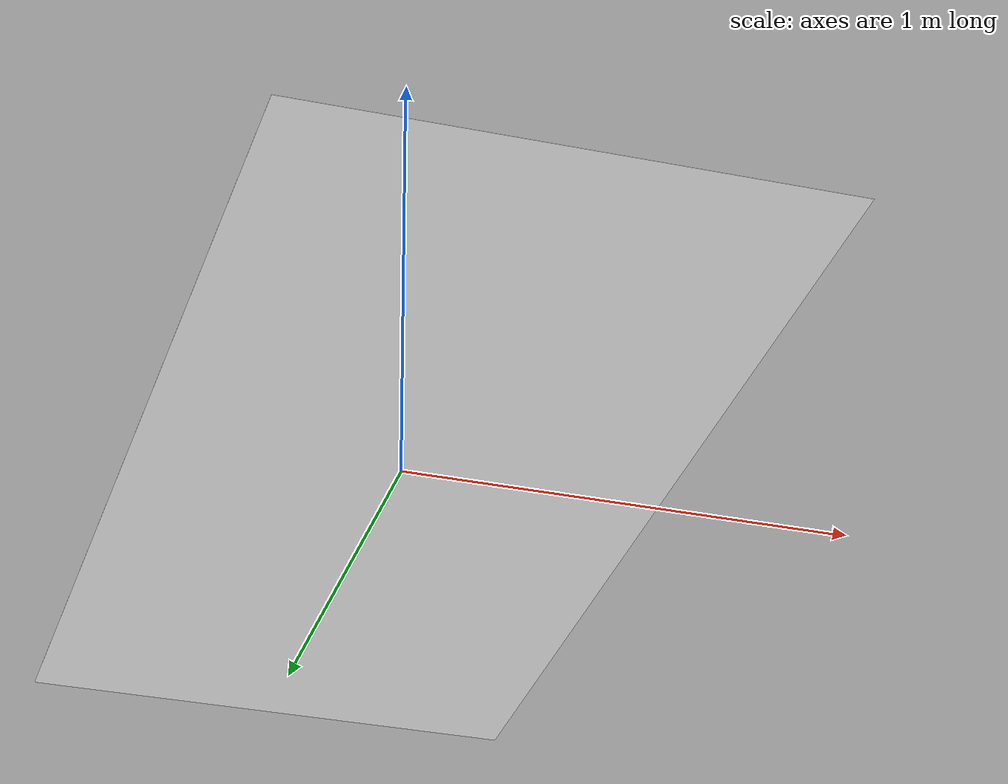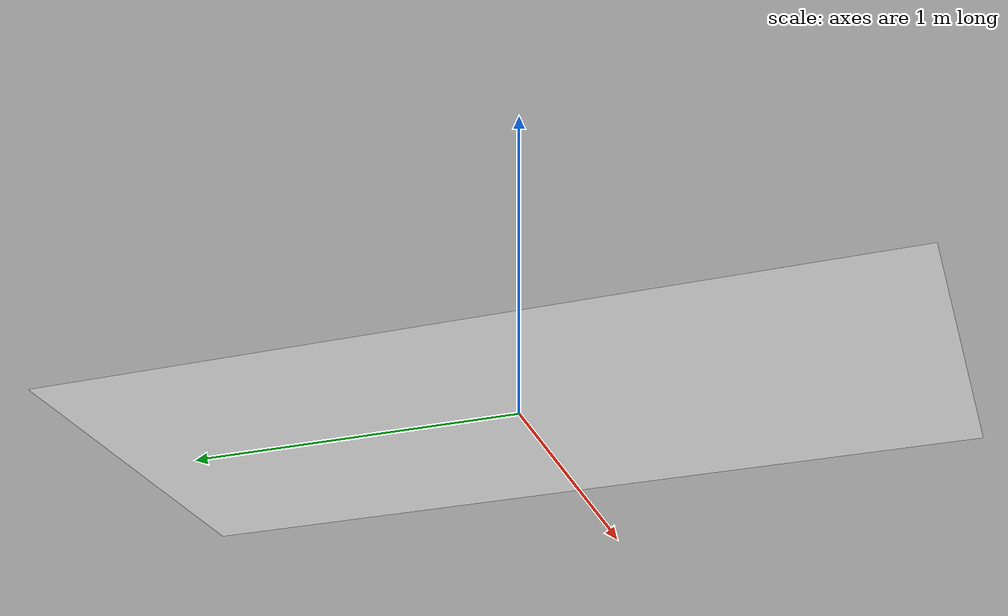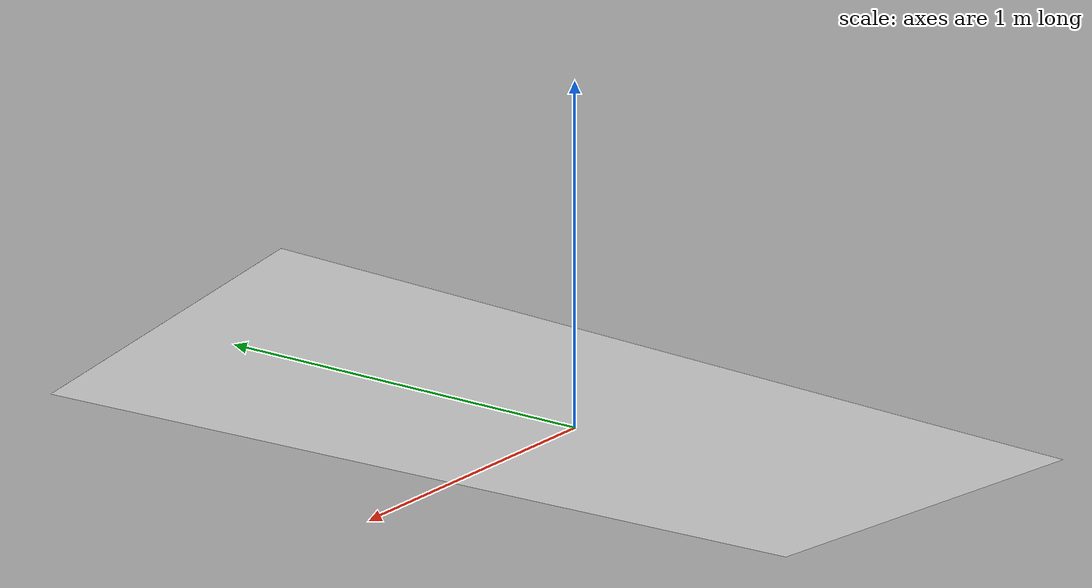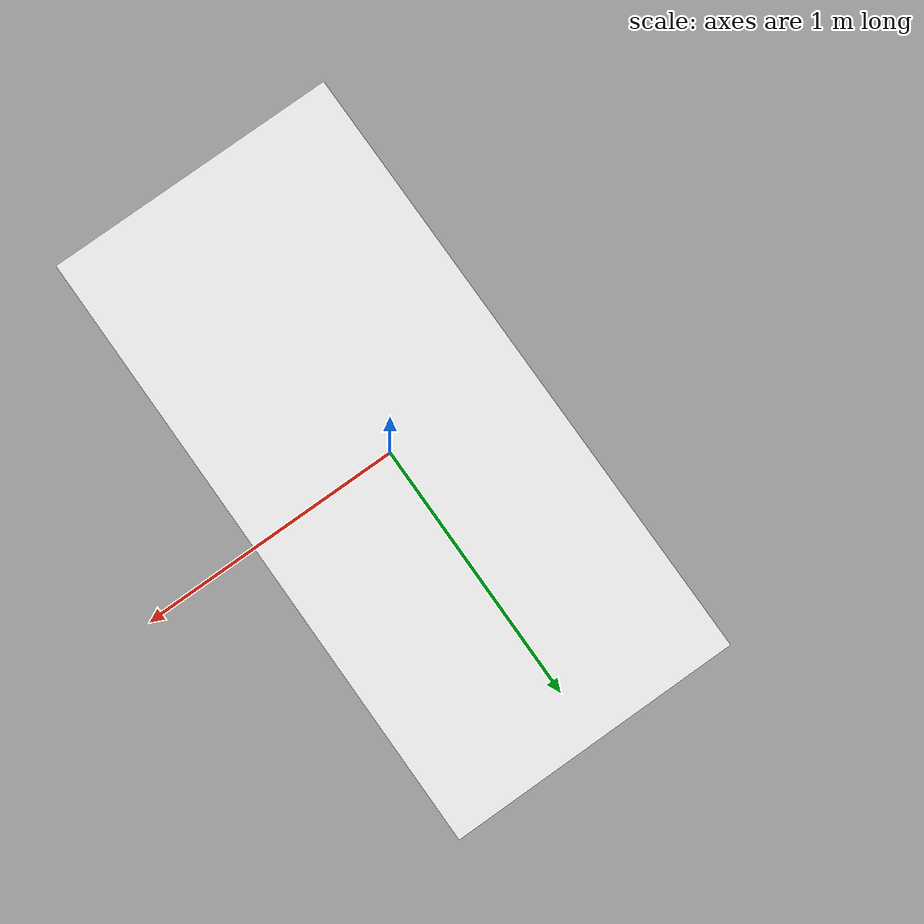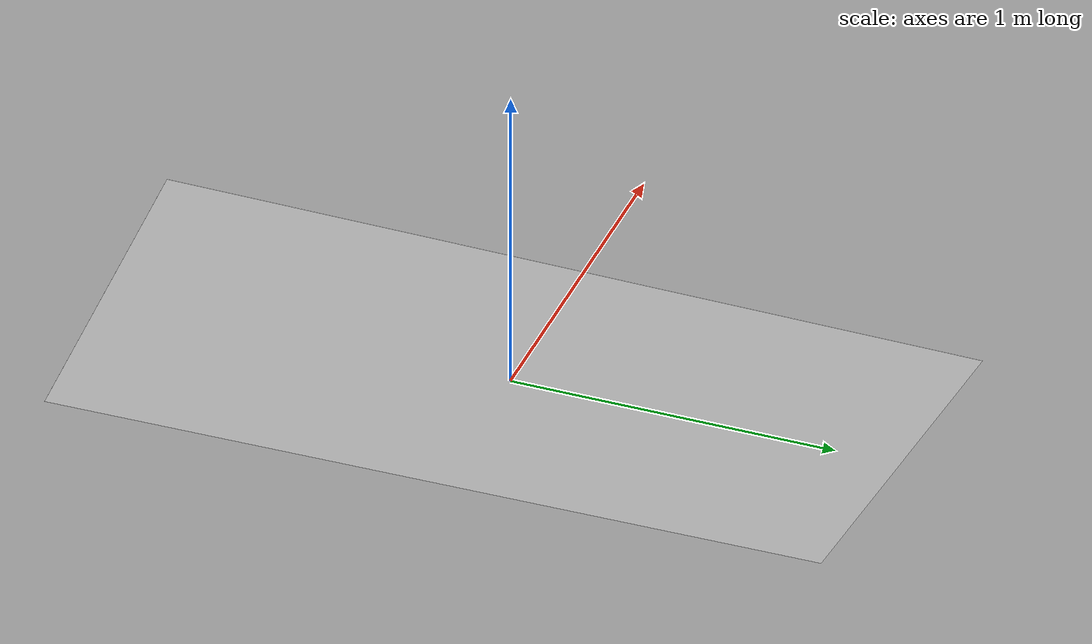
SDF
<?xml version='1.0'?>
<sdf version='1.6'>
  <model name='race_track16'>
    <static>true</static>
    <link name='link'>
      <visual name='visual'>
        <geometry>
          <box>
            <size>1.133 2.404 0.000553</size>
          </box>
        </geometry>
        <material>
          <script>
            <name>RaceTrack16/track16</name>
	    <uri>model://racetrack16/materials/scripts</uri>
            <uri>model://racetrack16/materials/textures</uri>
          </script>
          <ambient>1 1 1 1</ambient>
          <diffuse>1 1 1 1</diffuse>
          <specular>0.01 0.01 0.01 1</specular>
          <emissive>1 1 1 1</emissive>
        </material>
        <transparency>0</transparency>
      </visual>
      <collision name='collision'>
        <geometry>
          <box>
            <size>1.133 2.404 0.000553</size>
          </box>
        </geometry>
	<surface>
          <friction>
            <ode>
              <mu>100</mu>
              <mu2>50</mu2>
            </ode>
          </friction>
        </surface>
      </collision>
    </link>
  </model>
</sdf>
